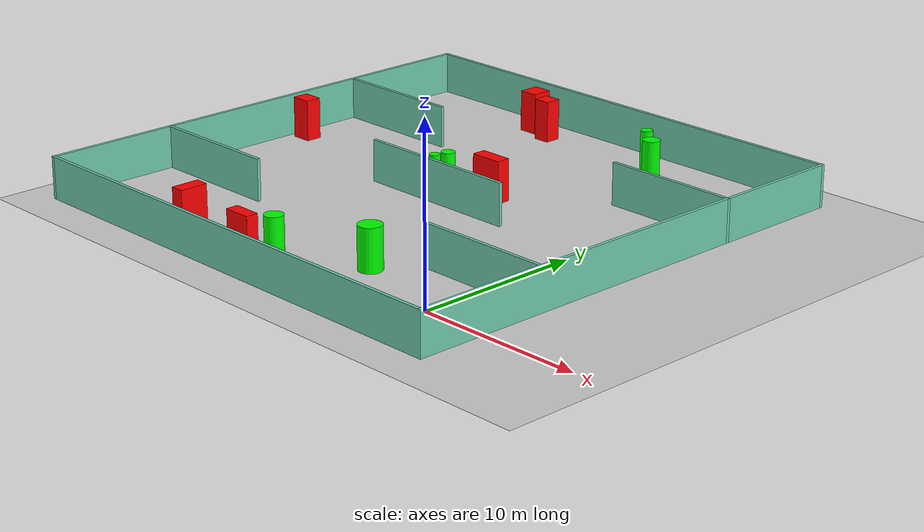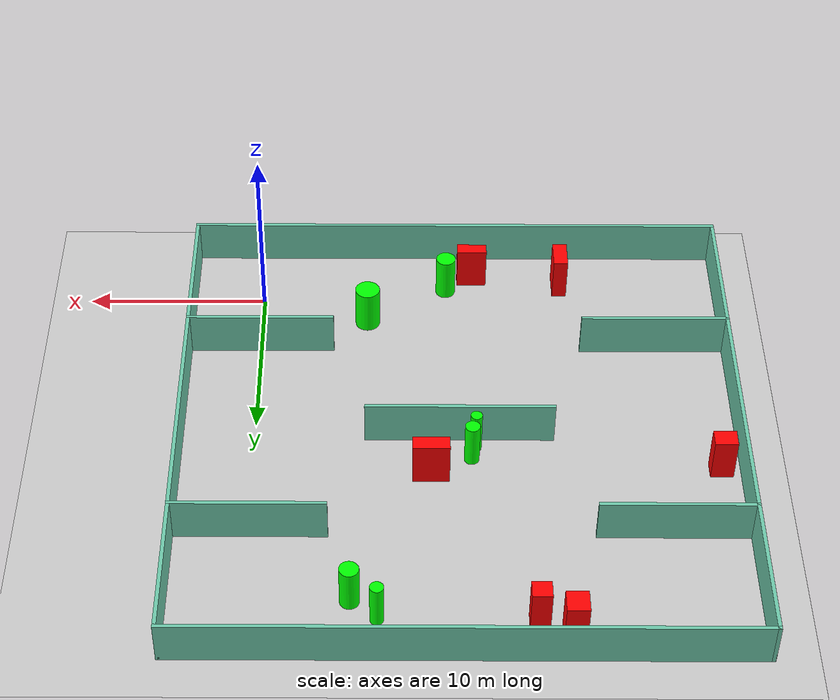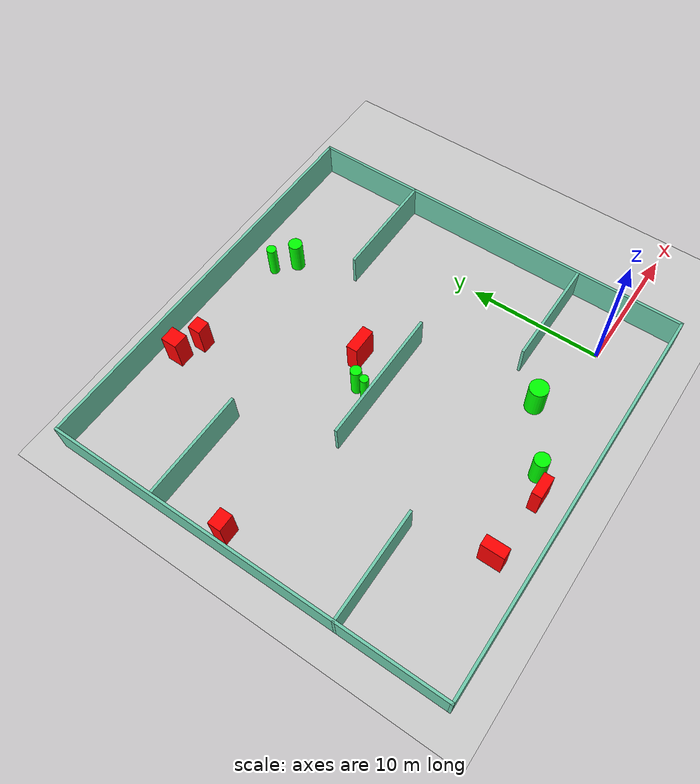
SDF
<sdf version="1.7">
 <world name="default">
  <light name="sun" type="directional">
   <pose>0 0 10 0 -0 0</pose>
   <diffuse>0.8 0.8 0.8 1</diffuse>
   <specular>0.2 0.2 0.2 1</specular>
   <attenuation>
    <range>1000</range>
    <constant>0.9</constant>
    <linear>0.01</linear>
    <quadratic>0.001</quadratic>
   </attenuation>
   <direction>-0.5 0.1 -0.9</direction>
   <spot><inner_angle>0</inner_angle><outer_angle>0</outer_angle><falloff>0</falloff></spot>
  </light>
  <model name="ground_plane">
   <static>1</static>
   <link name="link">
    <collision name="collision">
     <geometry><plane><normal>0 0 1</normal><size>100 100</size></plane></geometry>
     <surface>
      <contact><collide_bitmask>65535</collide_bitmask></contact>
      <friction><ode><mu>100</mu><mu2>50</mu2></ode></friction>
     </surface>
    </collision>
    <visual name="visual">
     <cast_shadows>0</cast_shadows>
     <geometry><plane><normal>0 0 1</normal><size>100 100</size></plane></geometry>
     <material>
      <script><uri>file://media/materials/scripts/gazebo.material</uri><name>Gazebo/Grey</name></script>
     </material>
    </visual>
   </link>
  </model>
  <gravity>0 0 -9.8</gravity>
  <magnetic_field>6e-06 2.3e-05 -4.2e-05</magnetic_field>
  <atmosphere type="adiabatic"/>
  <physics type="ode">
   <max_step_size>0.001</max_step_size>
   <real_time_factor>1</real_time_factor>
   <real_time_update_rate>1000</real_time_update_rate>
  </physics>
  <scene><ambient>0.4 0.4 0.4 1</ambient><background>0.7 0.7 0.7 1</background><shadows>1</shadows></scene>
  <spherical_coordinates>
   <surface_model>EARTH_WGS84</surface_model>
   <latitude_deg>0</latitude_deg>
   <longitude_deg>0</longitude_deg>
   <elevation>0</elevation>
   <heading_deg>0</heading_deg>
  </spherical_coordinates>
  <model name="my_base_walls">
   <link name="Wall_10">
    <collision name="Wall_10_Collision">
     <geometry><box><size>8.2 0.2 2.5</size></box></geometry>
     <pose>0 0 1.25 0 -0 0</pose>
    </collision>
    <visual name="Wall_10_Visual">
     <pose>0 0 1.25 0 -0 0</pose>
     <geometry><box><size>8.2 0.2 2.5</size></box></geometry>
     <material>
      <script><uri>file://media/materials/scripts/gazebo.material</uri><name>Gazebo/Grey</name></script>
      <ambient>0.435294 0.796078 0.67451 1</ambient>
     </material>
     <meta><layer>0</layer></meta>
    </visual>
    <pose>-11 -7 0 0 -0 0</pose>
   </link>
   <link name="Wall_12">
    <collision name="Wall_12_Collision">
     <geometry><box><size>8.2 0.2 2.5</size></box></geometry>
     <pose>0 0 1.25 0 -0 0</pose>
    </collision>
    <visual name="Wall_12_Visual">
     <pose>0 0 1.25 0 -0 0</pose>
     <geometry><box><size>8.2 0.2 2.5</size></box></geometry>
     <material>
      <script><uri>file://media/materials/scripts/gazebo.material</uri><name>Gazebo/Grey</name></script>
      <ambient>0.435294 0.796078 0.67451 1</ambient>
     </material>
     <meta><layer>0</layer></meta>
    </visual>
    <pose>-11 7 0 0 -0 0</pose>
   </link>
   <link name="Wall_14">
    <collision name="Wall_14_Collision">
     <geometry><box><size>8.2 0.2 2.5</size></box></geometry>
     <pose>0 0 1.25 0 -0 0</pose>
    </collision>
    <visual name="Wall_14_Visual">
     <pose>0 0 1.25 0 -0 0</pose>
     <geometry><box><size>8.2 0.2 2.5</size></box></geometry>
     <material>
      <script><uri>file://media/materials/scripts/gazebo.material</uri><name>Gazebo/Grey</name></script>
      <ambient>0.435294 0.796078 0.67451 1</ambient>
     </material>
     <meta><layer>0</layer></meta>
    </visual>
    <pose>11 7 0 0 -0 3.14159</pose>
   </link>
   <link name="Wall_16">
    <collision name="Wall_16_Collision">
     <geometry><box><size>10.2 0.2 2.5</size></box></geometry>
     <pose>0 0 1.25 0 -0 0</pose>
    </collision>
    <visual name="Wall_16_Visual">
     <pose>0 0 1.25 0 -0 0</pose>
     <geometry><box><size>10.2 0.2 2.5</size></box></geometry>
     <material>
      <script><uri>file://media/materials/scripts/gazebo.material</uri><name>Gazebo/Grey</name></script>
      <ambient>0.435294 0.796078 0.67451 1</ambient>
     </material>
     <meta><layer>0</layer></meta>
    </visual>
    <pose>0 0 0 0 -0 3.14159</pose>
   </link>
   <link name="Wall_2">
    <collision name="Wall_2_Collision">
     <geometry><box><size>30.2 0.2 2.5</size></box></geometry>
     <pose>0 0 1.25 0 -0 0</pose>
    </collision>
    <visual name="Wall_2_Visual">
     <pose>0 0 1.25 0 -0 0</pose>
     <geometry><box><size>30.2 0.2 2.5</size></box></geometry>
     <material>
      <script><uri>file://media/materials/scripts/gazebo.material</uri><name>Gazebo/Grey</name></script>
      <ambient>0.435294 0.796078 0.67451 1</ambient>
     </material>
     <meta><layer>0</layer></meta>
    </visual>
    <pose>0 -15 0 0 -0 3.14159</pose>
   </link>
   <link name="Wall_3">
    <collision name="Wall_3_Collision">
     <geometry><box><size>30.2 0.2 2.5</size></box></geometry>
     <pose>0 0 1.25 0 -0 0</pose>
    </collision>
    <visual name="Wall_3_Visual">
     <pose>0 0 1.25 0 -0 0</pose>
     <geometry><box><size>30.2 0.2 2.5</size></box></geometry>
     <material>
      <script><uri>file://media/materials/scripts/gazebo.material</uri><name>Gazebo/Grey</name></script>
      <ambient>0.435294 0.796078 0.67451 1</ambient>
     </material>
     <meta><layer>0</layer></meta>
    </visual>
    <pose>-15 0 0 0 -0 1.5708</pose>
   </link>
   <link name="Wall_4">
    <collision name="Wall_4_Collision">
     <geometry><box><size>30.2 0.2 2.5</size></box></geometry>
     <pose>0 0 1.25 0 -0 0</pose>
    </collision>
    <visual name="Wall_4_Visual">
     <pose>0 0 1.25 0 -0 0</pose>
     <geometry><box><size>30.2 0.2 2.5</size></box></geometry>
     <material>
      <script><uri>file://media/materials/scripts/gazebo.material</uri><name>Gazebo/Grey</name></script>
      <ambient>0.435294 0.796078 0.67451 1</ambient>
     </material>
     <meta><layer>0</layer></meta>
    </visual>
    <pose>0 15 0 0 -0 0</pose>
   </link>
   <link name="Wall_6">
    <collision name="Wall_6_Collision">
     <geometry><box><size>30.2 0.2 2.5</size></box></geometry>
     <pose>0 0 1.25 0 -0 0</pose>
    </collision>
    <visual name="Wall_6_Visual">
     <pose>0 0 1.25 0 -0 0</pose>
     <geometry><box><size>30.2 0.2 2.5</size></box></geometry>
     <material>
      <script><uri>file://media/materials/scripts/gazebo.material</uri><name>Gazebo/Grey</name></script>
      <ambient>0.435294 0.796078 0.67451 1</ambient>
     </material>
     <meta><layer>0</layer></meta>
    </visual>
    <pose>15 0 0 0 -0 1.5708</pose>
   </link>
   <link name="Wall_8">
    <collision name="Wall_8_Collision">
     <geometry><box><size>8.2 0.2 2.5</size></box></geometry>
     <pose>0 0 1.25 0 -0 0</pose>
    </collision>
    <visual name="Wall_8_Visual">
     <pose>0 0 1.25 0 -0 0</pose>
     <geometry><box><size>8.2 0.2 2.5</size></box></geometry>
     <material>
      <script><uri>file://media/materials/scripts/gazebo.material</uri><name>Gazebo/Grey</name></script>
      <ambient>0.435294 0.796078 0.67451 1</ambient>
     </material>
     <meta><layer>0</layer></meta>
    </visual>
    <pose>11 -7 0 0 -0 3.14159</pose>
   </link>
   <static>1</static>
   <pose>-11 11 0 0 -0 0</pose>
  </model>
  <model name="cylinder1">
   <static>1</static>
   <link name="link">
    <inertial>
     <mass>1</mass>
     <inertia><ixx>0.5</ixx><ixy>0</ixy><ixz>0</ixz><iyy>0.5</iyy><iyz>0</iyz><izz>1</izz></inertia>
    </inertial>
    <collision name="collision">
     <geometry><cylinder><radius>0.512324457094961</radius><length>2.5</length></cylinder></geometry>
    </collision>
    <visual name="visual">
     <geometry><cylinder><radius>0.512324457094961</radius><length>2.5</length></cylinder></geometry>
     <material>
      <ambient>0 1 0 1</ambient>
      <diffuse>0 1 0 1</diffuse>
      <specular>0.1 0.1 0.1 1</specular>
      <emissive>0 0 0 0</emissive>
     </material>
    </visual>
   </link>
   <pose>-5.283986202535342 22.406213824072417 1.25 0 0 0</pose>
  </model>
  <model name="cylinder2">
   <static>1</static>
   <link name="link">
    <inertial>
     <mass>1</mass>
     <inertia><ixx>0.5</ixx><ixy>0</ixy><ixz>0</ixz><iyy>0.5</iyy><iyz>0</iyz><izz>1</izz></inertia>
    </inertial>
    <collision name="collision">
     <geometry><cylinder><radius>0.3134604850904753</radius><length>2.5</length></cylinder></geometry>
    </collision>
    <visual name="visual">
     <geometry><cylinder><radius>0.3134604850904753</radius><length>2.5</length></cylinder></geometry>
     <material>
      <ambient>0 1 0 1</ambient>
      <diffuse>0 1 0 1</diffuse>
      <specular>0.1 0.1 0.1 1</specular>
      <emissive>0 0 0 0</emissive>
     </material>
    </visual>
   </link>
   <pose>-11.862372632706949 11.704678366250084 1.25 0 0 0</pose>
  </model>
  <model name="cylinder3">
   <static>1</static>
   <link name="link">
    <inertial>
     <mass>1</mass>
     <inertia><ixx>0.5</ixx><ixy>0</ixy><ixz>0</ixz><iyy>0.5</iyy><iyz>0</iyz><izz>1</izz></inertia>
    </inertial>
    <collision name="collision">
     <geometry><cylinder><radius>0.40246628859476713</radius><length>2.5</length></cylinder></geometry>
    </collision>
    <visual name="visual">
     <geometry><cylinder><radius>0.40246628859476713</radius><length>2.5</length></cylinder></geometry>
     <material>
      <ambient>0 1 0 1</ambient>
      <diffuse>0 1 0 1</diffuse>
      <specular>0.1 0.1 0.1 1</specular>
      <emissive>0 0 0 0</emissive>
     </material>
    </visual>
   </link>
   <pose>-11.640512305259517 12.524396076850937 1.25 0 0 0</pose>
  </model>
  <model name="cylinder4">
   <static>1</static>
   <link name="link">
    <inertial>
     <mass>1</mass>
     <inertia><ixx>0.5</ixx><ixy>0</ixy><ixz>0</ixz><iyy>0.5</iyy><iyz>0</iyz><izz>1</izz></inertia>
    </inertial>
    <collision name="collision">
     <geometry><cylinder><radius>0.6870777920512968</radius><length>2.5</length></cylinder></geometry>
    </collision>
    <visual name="visual">
     <geometry><cylinder><radius>0.6870777920512968</radius><length>2.5</length></cylinder></geometry>
     <material>
      <ambient>0 1 0 1</ambient>
      <diffuse>0 1 0 1</diffuse>
      <specular>0.1 0.1 0.1 1</specular>
      <emissive>0 0 0 0</emissive>
     </material>
    </visual>
   </link>
   <pose>-5.967608483043033 1.7055725792591163 1.25 0 0 0</pose>
  </model>
  <model name="cylinder5">
   <static>1</static>
   <link name="link">
    <inertial>
     <mass>1</mass>
     <inertia><ixx>0.5</ixx><ixy>0</ixy><ixz>0</ixz><iyy>0.5</iyy><iyz>0</iyz><izz>1</izz></inertia>
    </inertial>
    <collision name="collision">
     <geometry><cylinder><radius>0.3581668021822975</radius><length>2.5</length></cylinder></geometry>
    </collision>
    <visual name="visual">
     <geometry><cylinder><radius>0.3581668021822975</radius><length>2.5</length></cylinder></geometry>
     <material>
      <ambient>0 1 0 1</ambient>
      <diffuse>0 1 0 1</diffuse>
      <specular>0.1 0.1 0.1 1</specular>
      <emissive>0 0 0 0</emissive>
     </material>
    </visual>
   </link>
   <pose>-6.658942816531379 23.555622859768995 1.25 0 0 0</pose>
  </model>
  <model name="cylinder6">
   <static>1</static>
   <link name="link">
    <inertial>
     <mass>1</mass>
     <inertia><ixx>0.5</ixx><ixy>0</ixy><ixz>0</ixz><iyy>0.5</iyy><iyz>0</iyz><izz>1</izz></inertia>
    </inertial>
    <collision name="collision">
     <geometry><cylinder><radius>0.5477872542363418</radius><length>2.5</length></cylinder></geometry>
    </collision>
    <visual name="visual">
     <geometry><cylinder><radius>0.5477872542363418</radius><length>2.5</length></cylinder></geometry>
     <material>
      <ambient>0 1 0 1</ambient>
      <diffuse>0 1 0 1</diffuse>
      <specular>0.1 0.1 0.1 1</specular>
      <emissive>0 0 0 0</emissive>
     </material>
    </visual>
   </link>
   <pose>-10.43361079501997 -0.9809698376297873 1.25 0 0 0</pose>
  </model>
  <model name="box1">
   <static>1</static>
   <link name="link">
    <inertial>
     <mass>1</mass>
     <inertia><ixx>0.083</ixx><ixy>0</ixy><ixz>0</ixz><iyy>0.083</iyy><iyz>0</iyz><izz>0.083</izz></inertia>
    </inertial>
    <collision name="collision">
     <geometry><box><size>1.0254913686523115 0.9696376386747995 2.5</size></box></geometry>
    </collision>
    <visual name="visual">
     <geometry><box><size>1.0254913686523115 0.9696376386747995 2.5</size></box></geometry>
     <material>
      <ambient>1 0 0 1</ambient>
      <diffuse>1 0 0 1</diffuse>
      <specular>0.1 0.1 0.1 1</specular>
      <emissive>0 0 0 0</emissive>
     </material>
    </visual>
    <sensor name="my_contact" type="contact">
     <contact><collision>box_collision</collision><topic>__default_topic__</topic></contact>
    </sensor>
   </link>
   <pose>-14.738103564049636 23.64901044801079 1.25 0 0 0</pose>
  </model>
  <model name="box2">
   <static>1</static>
   <link name="link">
    <inertial>
     <mass>1</mass>
     <inertia><ixx>0.083</ixx><ixy>0</ixy><ixz>0</ixz><iyy>0.083</iyy><iyz>0</iyz><izz>0.083</izz></inertia>
    </inertial>
    <collision name="collision">
     <geometry><box><size>1.2298950447156356 0.9663935372078458 2.5</size></box></geometry>
    </collision>
    <visual name="visual">
     <geometry><box><size>1.2298950447156356 0.9663935372078458 2.5</size></box></geometry>
     <material>
      <ambient>1 0 0 1</ambient>
      <diffuse>1 0 0 1</diffuse>
      <specular>0.1 0.1 0.1 1</specular>
      <emissive>0 0 0 0</emissive>
     </material>
    </visual>
    <sensor name="my_contact" type="contact">
     <contact><collision>box_collision</collision><topic>__default_topic__</topic></contact>
    </sensor>
   </link>
   <pose>-24.866530076802913 13.305343587908087 1.25 0 0 0</pose>
  </model>
  <model name="box3">
   <static>1</static>
   <link name="link">
    <inertial>
     <mass>1</mass>
     <inertia><ixx>0.083</ixx><ixy>0</ixy><ixz>0</ixz><iyy>0.083</iyy><iyz>0</iyz><izz>0.083</izz></inertia>
    </inertial>
    <collision name="collision">
     <geometry><box><size>1.9673949369298085 0.8389273204437391 2.5</size></box></geometry>
    </collision>
    <visual name="visual">
     <geometry><box><size>1.9673949369298085 0.8389273204437391 2.5</size></box></geometry>
     <material>
      <ambient>1 0 0 1</ambient>
      <diffuse>1 0 0 1</diffuse>
      <specular>0.1 0.1 0.1 1</specular>
      <emissive>0 0 0 0</emissive>
     </material>
    </visual>
    <sensor name="my_contact" type="contact">
     <contact><collision>box_collision</collision><topic>__default_topic__</topic></contact>
    </sensor>
   </link>
   <pose>-9.448950949513918 13.739866256382978 1.25 0 0 0</pose>
  </model>
  <model name="box4">
   <static>1</static>
   <link name="link">
    <inertial>
     <mass>1</mass>
     <inertia><ixx>0.083</ixx><ixy>0</ixy><ixz>0</ixz><iyy>0.083</iyy><iyz>0</iyz><izz>0.083</izz></inertia>
    </inertial>
    <collision name="collision">
     <geometry><box><size>1.6672516446346763 0.7292609646069326 2.5</size></box></geometry>
    </collision>
    <visual name="visual">
     <geometry><box><size>1.6672516446346763 0.7292609646069326 2.5</size></box></geometry>
     <material>
      <ambient>1 0 0 1</ambient>
      <diffuse>1 0 0 1</diffuse>
      <specular>0.1 0.1 0.1 1</specular>
      <emissive>0 0 0 0</emissive>
     </material>
    </visual>
    <sensor name="my_contact" type="contact">
     <contact><collision>box_collision</collision><topic>__default_topic__</topic></contact>
    </sensor>
   </link>
   <pose>-11.93913130697538 -1.8710087259360493 1.25 0 0 0</pose>
  </model>
  <model name="box5">
   <static>1</static>
   <link name="link">
    <inertial>
     <mass>1</mass>
     <inertia><ixx>0.083</ixx><ixy>0</ixy><ixz>0</ixz><iyy>0.083</iyy><iyz>0</iyz><izz>0.083</izz></inertia>
    </inertial>
    <collision name="collision">
     <geometry><box><size>1.1599758098274289 1.249255975291216 2.5</size></box></geometry>
    </collision>
    <visual name="visual">
     <geometry><box><size>1.1599758098274289 1.249255975291216 2.5</size></box></geometry>
     <material>
      <ambient>1 0 0 1</ambient>
      <diffuse>1 0 0 1</diffuse>
      <specular>0.1 0.1 0.1 1</specular>
      <emissive>0 0 0 0</emissive>
     </material>
    </visual>
    <sensor name="my_contact" type="contact">
     <contact><collision>box_collision</collision><topic>__default_topic__</topic></contact>
    </sensor>
   </link>
   <pose>-16.440710445190593 24.37017813900207 1.25 0 0 0</pose>
  </model>
  <model name="box6">
   <static>1</static>
   <link name="link">
    <inertial>
     <mass>1</mass>
     <inertia><ixx>0.083</ixx><ixy>0</ixy><ixz>0</ixz><iyy>0.083</iyy><iyz>0</iyz><izz>0.083</izz></inertia>
    </inertial>
    <collision name="collision">
     <geometry><box><size>0.8016436982376446 1.6879950456007395 2.5</size></box></geometry>
    </collision>
    <visual name="visual">
     <geometry><box><size>0.8016436982376446 1.6879950456007395 2.5</size></box></geometry>
     <material>
      <ambient>1 0 0 1</ambient>
      <diffuse>1 0 0 1</diffuse>
      <specular>0.1 0.1 0.1 1</specular>
      <emissive>0 0 0 0</emissive>
     </material>
    </visual>
    <sensor name="my_contact" type="contact">
     <contact><collision>box_collision</collision><topic>__default_topic__</topic></contact>
    </sensor>
   </link>
   <pose>-17.00960108916669 -1.4381415862134266 1.25 0 0 0</pose>
  </model>
 </world>
</sdf>
